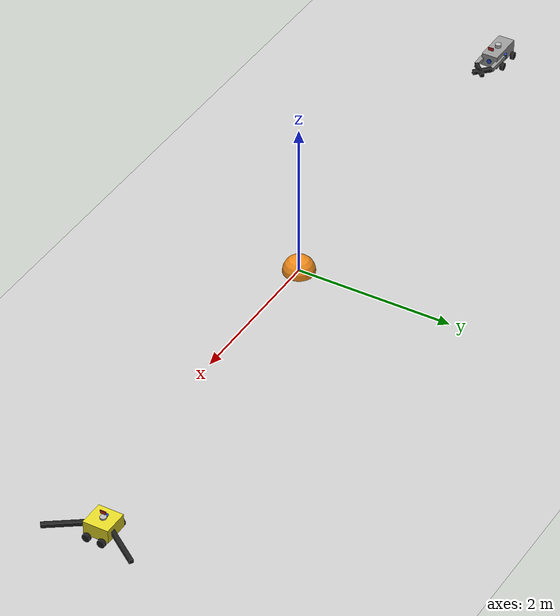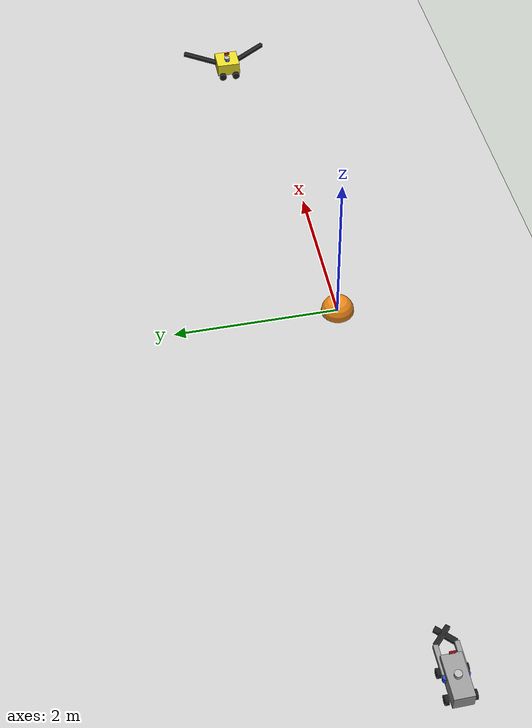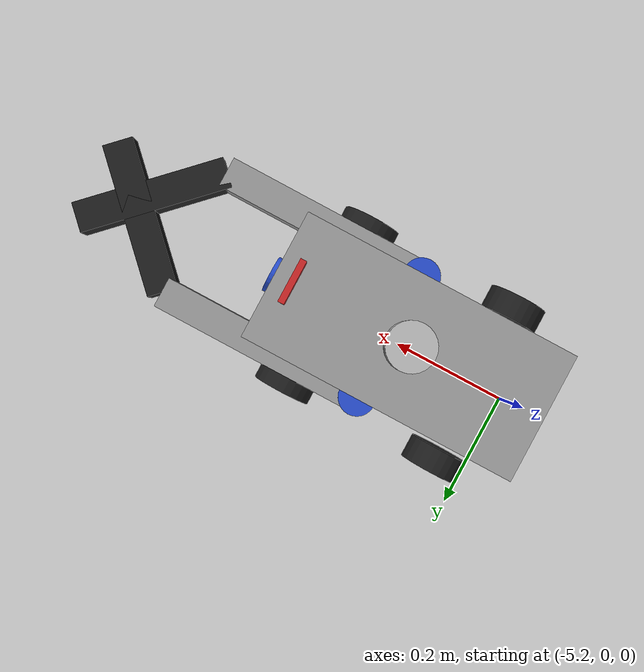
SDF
<sdf version="1.5">
 <world name="default">
  <include><uri>model://sun</uri></include>
  <include><uri>model://ground_plane</uri></include>
  <include><uri>model://soccer_ball</uri><name>soccer_ball</name></include>
  <model name="tankbot0">
   <pose>-5 0 0 0 0 0</pose>
   <include><uri>model://tankbot_kicker</uri></include>
   <plugin name="tankbot_control" filename="libtank_control_plugin.so"/>
  </model>
  <model name="tankbot1">
   <pose>5 0.5 0 0 0 1.5707963267948966</pose>
   <include><uri>model://tankbot_goalie</uri></include>
   <plugin name="tankbot_control" filename="libtank_control_plugin.so"/>
  </model>
 </world>
</sdf>

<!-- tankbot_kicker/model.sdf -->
<sdf version="1.5">
  <!-- http://sdformat.org/spec?elem=sensor&ver=1.5 -->
  <model name="tankbot">
    <link name="chassis">
      <pose>0 0 0.135 0 0 0</pose>

      <inertial>
        <pose>0.04650000000000001 0 0  0 0 0</pose>
        <mass>2.0</mass>
        <inertia>
          <ixx>0.012592666666666665</ixx><iyy>0.04085416666666667</iyy><izz>0.043813500000000005</izz>
          <ixy>0</ixy><ixz>0</ixz><iyz>0</iyz>
        </inertia>
      </inertial>

      <collision name="collision">
        <geometry>
          <box>
            <size>0.465 0.216 0.17</size>
          </box>
        </geometry>
      </collision>

      <visual name="visual">
        <geometry>
          <box>
            <size>0.465 0.216 0.17</size>
          </box>
        </geometry>
        <material>
          <script>
            <uri>file://media/materials/scripts/gazebo.material</uri>
            <name>Gazebo/Grey</name>
          </script>
        </material>
      </visual>
    </link>

    <link name="kicker">
      <pose>
        0.11750000000000001 0 0.135
        0 1.5707963267948966 0
      </pose>
      <inertial>
        <mass>0.5</mass>
        <inertia>
          <ixx>0.0027166666666666663</ixx><iyy>0.0027166666666666663</iyy><izz>0.000225</izz>
          <ixy>0</ixy><ixz>0</ixz><iyz>0</iyz></inertia>
      </inertial>

      <collision name='collision'>
        <geometry><cylinder><radius>0.03</radius><length>0.25</length></cylinder></geometry>
      </collision>

      <visual name="visual">
        <geometry><cylinder><radius>0.03</radius><length>0.25</length></cylinder></geometry>
        <material>
          <script>
            <uri>file://media/materials/scripts/gazebo.material</uri>
            <name>Gazebo/Blue</name>
          </script>
        </material>
      </visual>
    </link>

    <joint name="kicker_joint" type="prismatic">
      <parent>chassis</parent>
      <child>kicker</child>
      <axis>
        <xyz>0 0 1</xyz>
        <limit>
          <lower>0</lower>
          <upper> 0.24</upper>
          <effort>50</effort>
        </limit>
        <dynamics>
          <friction>1</friction>
          <damping>1</damping>
        </dynamics>
      </axis>
    </joint>

    <link name="right_aftarm">
      <pose>
        0.20450000000000002
        -0.108
        0.135 0 0 0
      </pose>

      <inertial>
        <mass>0.1</mass>
        <inertia>
          <ixx>4.166666666666667e-05</ixx><iyy>0.0010416666666666664</iyy><izz>0.0010416666666666664</izz>
          <ixy>0</ixy><ixz>0</ixz><iyz>0</iyz>
        </inertia>
      </inertial>

      <visual name='visual'>
        <geometry><box><size>0.35 0.05 0.05</size></box></geometry>
        <material>
          <script><uri>file://media/materials/scripts/gazebo.material</uri><name>Gazebo/Grey</name></script>
        </material>
      </visual>

      <collision name='collision'>
        <geometry><box><size>0.35 0.05 0.05</size></box></geometry>
      </collision>
    </link>

    <link name="right_forearm">
      <pose>
        0.46611165235168156
        -0.019611652351681566
        0.135 0 0 0.7853981633974483
      </pose>

      <inertial>
        <mass>0.1</mass>
        <inertia>
          <ixx>4.166666666666667e-05</ixx><iyy>0.0005416666666666666</iyy><izz>0.0005416666666666666</izz>
          <ixy>0</ixy><ixz>0</ixz><iyz>0</iyz>
        </inertia>
      </inertial>

      <visual name='visual'>
        <geometry><box><size>0.25 0.05 0.05</size></box></geometry>
        <material>
          <script><uri>file://media/materials/scripts/gazebo.material</uri><name>Gazebo/Black</name></script>
        </material>
      </visual>

      <collision name='collision'>
        <geometry><box><size>0.25 0.05 0.05</size></box></geometry>
      </collision>
    </link>

    <link name="right_shoulder">
      <pose>
        0.029500000000000026
        -0.108
        0.135 0 0 0.7853981633974483
      </pose>

      <inertial>
        <mass>0.1</mass>
        <inertia>
          <ixx>5.25e-05</ixx><iyy>5.25e-05</iyy><izz>4.5e-05</izz>
          <ixy>0</ixy><ixz>0</ixz><iyz>0</iyz>
        </inertia>
      </inertial>

      <visual name='visual'>
        <geometry><cylinder><radius>0.03</radius><length>0.06</length></cylinder></geometry>
        <material>
          <script><uri>file://media/materials/scripts/gazebo.material</uri><name>Gazebo/Blue</name></script>
        </material>
      </visual>

      <collision name='collision'>
        <geometry><cylinder><radius>0.03</radius><length>0.06</length></cylinder></geometry>
      </collision>
    </link>

    <joint name="right_elbow_joint" type="fixed">
      <parent>right_aftarm</parent>
      <child>right_forearm</child>
    </joint>

    <joint name="right_pre_shoulder_joint" type="fixed">
      <parent>right_shoulder</parent>
      <child>right_aftarm</child>
    </joint>

    <joint name="right_shoulder_joint" type="revolute">
      <parent>chassis</parent>
      <child>right_shoulder</child>
      <axis>
        <xyz>0 0 1</xyz>
        <dynamics>
          <damping>
            1
          </damping>
        </dynamics>
      </axis>
    </joint>

    <link name="left_aftarm">
      <pose>
        0.20450000000000002
        0.108
        0.135 0 0 0
      </pose>

      <inertial>
        <mass>0.1</mass>
        <inertia>
          <ixx>4.166666666666667e-05</ixx><iyy>0.0010416666666666664</iyy><izz>0.0010416666666666664</izz>
          <ixy>0</ixy><ixz>0</ixz><iyz>0</iyz>
        </inertia>
      </inertial>

      <visual name='visual'>
        <geometry><box><size>0.35 0.05 0.05</size></box></geometry>
        <material>
          <script><uri>file://media/materials/scripts/gazebo.material</uri><name>Gazebo/Grey</name></script>
        </material>
      </visual>

      <collision name='collision'>
        <geometry><box><size>0.35 0.05 0.05</size></box></geometry>
      </collision>
    </link>

    <link name="left_forearm">
      <pose>
        0.46611165235168156
        0.019611652351681566
        0.135 0 0 -0.7853981633974483
      </pose>

      <inertial>
        <mass>0.1</mass>
        <inertia>
          <ixx>4.166666666666667e-05</ixx><iyy>0.0005416666666666666</iyy><izz>0.0005416666666666666</izz>
          <ixy>0</ixy><ixz>0</ixz><iyz>0</iyz>
        </inertia>
      </inertial>

      <visual name='visual'>
        <geometry><box><size>0.25 0.05 0.05</size></box></geometry>
        <material>
          <script><uri>file://media/materials/scripts/gazebo.material</uri><name>Gazebo/Black</name></script>
        </material>
      </visual>

      <collision name='collision'>
        <geometry><box><size>0.25 0.05 0.05</size></box></geometry>
      </collision>
    </link>

    <link name="left_shoulder">
      <pose>
        0.029500000000000026
        0.108
        0.135 0 0 -0.7853981633974483
      </pose>

      <inertial>
        <mass>0.1</mass>
        <inertia>
          <ixx>5.25e-05</ixx><iyy>5.25e-05</iyy><izz>4.5e-05</izz>
          <ixy>0</ixy><ixz>0</ixz><iyz>0</iyz>
        </inertia>
      </inertial>

      <visual name='visual'>
        <geometry><cylinder><radius>0.03</radius><length>0.06</length></cylinder></geometry>
        <material>
          <script><uri>file://media/materials/scripts/gazebo.material</uri><name>Gazebo/Blue</name></script>
        </material>
      </visual>

      <collision name='collision'>
        <geometry><cylinder><radius>0.03</radius><length>0.06</length></cylinder></geometry>
      </collision>
    </link>

    <joint name="left_elbow_joint" type="fixed">
      <parent>left_aftarm</parent>
      <child>left_forearm</child>
    </joint>

    <joint name="left_pre_shoulder_joint" type="fixed">
      <parent>left_shoulder</parent>
      <child>left_aftarm</child>
    </joint>

    <joint name="left_shoulder_joint" type="revolute">
      <parent>chassis</parent>
      <child>left_shoulder</child>
      <axis>
        <xyz>0 0 1</xyz>
        <dynamics>
          <damping>
            1
          </damping>
        </dynamics>
      </axis>
    </joint>

    <link name="wheel_fl">
      <pose>
        0.1395 0.14200000000000002 0.05
        -1.5707963267948966 -0.08726646259971647 0
      </pose>
      <inertial>
        <mass>0.25</mass>
        <inertia>
          <ixx>0.00018958333333333338</ixx>
          <iyy>0.00018958333333333338</iyy>
          <izz>0.00031250000000000006</izz>
          <ixy>0</ixy>
          <ixz>0</ixz>
          <iyz>0</iyz>
        </inertia>
      </inertial>
      <collision name="collision">
        <geometry>
          <cylinder>
            <radius>0.05</radius>
            <length>0.04</length>
          </cylinder>
        </geometry>
      </collision>
      <visual name="visual">
        <geometry>
          <cylinder>
            <radius>0.05</radius>
            <length>0.04</length>
          </cylinder>
        </geometry>
        <material>
          <script>
            <uri>file://media/materials/scripts/gazebo.material</uri>
            <name>Gazebo/Black</name>
          </script>
        </material>
      </visual>
    </link>

    <joint name="wheel_fl_drive" type="revolute">
      <parent>chassis</parent>
      <child>wheel_fl</child>
      <axis>
        <xyz>0 0 1</xyz>
      </axis>
    </joint>

    <link name="wheel_fr">
      <pose>
        0.1395 -0.14200000000000002 0.05
        -1.5707963267948966 -0.08726646259971647 0
      </pose>
      <inertial>
        <mass>0.25</mass>
        <inertia>
          <ixx>0.00018958333333333338</ixx>
          <iyy>0.00018958333333333338</iyy>
          <izz>0.00031250000000000006</izz>
          <ixy>0</ixy>
          <ixz>0</ixz>
          <iyz>0</iyz>
        </inertia>
      </inertial>
      <collision name="collision">
        <geometry>
          <cylinder>
            <radius>0.05</radius>
            <length>0.04</length>
          </cylinder>
        </geometry>
      </collision>
      <visual name="visual">
        <geometry>
          <cylinder>
            <radius>0.05</radius>
            <length>0.04</length>
          </cylinder>
        </geometry>
        <material>
          <script>
            <uri>file://media/materials/scripts/gazebo.material</uri>
            <name>Gazebo/Black</name>
          </script>
        </material>
      </visual>
    </link>

    <joint name="wheel_fr_drive" type="revolute">
      <parent>chassis</parent>
      <child>wheel_fr</child>
      <axis>
        <xyz>0 0 1</xyz>
      </axis>
    </joint>

    <link name="wheel_rl">
      <pose>
       -0.1395 0.14200000000000002 0.05
       -1.5707963267948966 0 0
      </pose>
      <inertial>
        <mass>0.25</mass>
        <inertia>
          <ixx>0.00018958333333333338</ixx>
          <iyy>0.00018958333333333338</iyy>
          <izz>0.00031250000000000006</izz>
          <ixy>0</ixy>
          <ixz>0</ixz>
          <iyz>0</iyz>
        </inertia>
      </inertial>
      <collision name="collision">
        <geometry>
          <cylinder>
            <radius>0.05</radius>
            <length>0.04</length>
          </cylinder>
        </geometry>
      </collision>
      <visual name="visual">
        <geometry>
          <cylinder>
            <radius>0.05</radius>
            <length>0.04</length>
          </cylinder>
        </geometry>
        <material>
          <script>
            <uri>file://media/materials/scripts/gazebo.material</uri>
            <name>Gazebo/Black</name>
          </script>
        </material>
      </visual>
    </link>
    <joint name="wheel_rl_drive" type="revolute">
      <parent>chassis</parent>
      <child>wheel_rl</child>
      <axis>
        <xyz>0 0 1</xyz>
      </axis>
    </joint>

    <link name="wheel_rr">
      <pose>
       -0.1395 -0.14200000000000002 0.05
       -1.5707963267948966 0 0
      </pose>
      <inertial>
        <mass>0.25</mass>
        <inertia>
          <ixx>0.00018958333333333338</ixx>
          <iyy>0.00018958333333333338</iyy>
          <izz>0.00031250000000000006</izz>
          <ixy>0</ixy>
          <ixz>0</ixz>
          <iyz>0</iyz>
        </inertia>
      </inertial>
      <collision name="collision">
        <geometry>
          <cylinder>
            <radius>0.05</radius>
            <length>0.04</length>
          </cylinder>
        </geometry>
      </collision>
      <visual name="visual">
        <geometry>
          <cylinder>
            <radius>0.05</radius>
            <length>0.04</length>
          </cylinder>
        </geometry>
        <material>
          <script>
            <uri>file://media/materials/scripts/gazebo.material</uri>
            <name>Gazebo/Black</name>
          </script>
        </material>
      </visual>
    </link>
    <joint name="wheel_rr_drive" type="revolute">
      <parent>chassis</parent>
      <child>wheel_rr</child>
      <axis>
        <xyz>0 0 1</xyz>
      </axis>
    </joint>

    <include>
      <uri>model://ultrasonic_sensor</uri>
      <pose>
        0.0 0.0 0.24000000000000002
        0.0 0.0 0.0
      </pose>
    </include>

    <joint name="sonar_joint" type="fixed">
      <child>ultrasonic_sensor::link</child>
      <parent>chassis</parent>
    </joint>

    <include>
      <uri>model://camera_sensor</uri>
      <pose>
        0.2 0.0 0.3
        0.0 0.0 0.0
      </pose>
    </include>

    <joint name="camera_joint" type="fixed">
      <child>camera_sensor::link</child>
      <parent>chassis</parent>
    </joint>
  </model>
</sdf>

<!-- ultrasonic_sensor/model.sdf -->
<sdf version="1.6">
  <model name="ultrasonic_sensor">
    <pose>0 0 0.02 0 0 0</pose>
    <link name="link">

      <inertial>
        <mass>0.1</mass>
      </inertial>

      <visual name="visual">
        <geometry>
          <cylinder>
            <radius>0.04</radius>
            <length>0.04</length>
          </cylinder>
        </geometry>
      </visual>

      <collision name="collision-base">
        <pose>0 0 -0.0145 0 0 0</pose>
        <geometry>
          <box>
            <size>0.05 0.05 0.041</size>
          </box>
        </geometry>
      </collision>

      <collision name="collision-top">
        <pose>0 0 0.0205 0 0 0</pose>
        <geometry>
          <cylinder>
            <radius>0.021</radius>
            <length>0.029</length>
          </cylinder>
        </geometry>
      </collision>

      <sensor name="sonar" type="sonar">
        <pose>0.04 0 0 0 1.5 3.14</pose>
        <sonar>
          <min>0</min>
          <max>3</max>
          <radius>0.3</radius>
        </sonar>
        <plugin name="sonar" filename="libSonarPlugin.so" />
        <always_on>1</always_on>
        <update_rate>30</update_rate>
        <visualize>true</visualize>
      </sensor>

    </link>
  </model>
</sdf>

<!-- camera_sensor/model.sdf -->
<sdf version="1.6">
  <model name="camera_sensor">
    <pose>0 0 0.02 0 0 0</pose>
    <link name="link">
      <inertial>
        <mass>0.1</mass>
      </inertial>

      <visual name="visual">
        <geometry>
          <box>
            <size>0.01 0.07 0.04</size>
          </box>
        </geometry>
        <material>
          <script>
            <uri>file://media/materials/scripts/gazebo.material</uri>
            <name>Gazebo/Red</name>
          </script>
        </material>
      </visual>

      <collision name="collision">
        <pose>0 0 -0.0145 0 0 0</pose>
        <geometry>
          <box>
            <size>0.01 0.07 0.04</size>
          </box>
        </geometry>
      </collision>

      <sensor name='camera' type='camera'>
        <camera>
          <horizontal_fov>1.3962634</horizontal_fov>
          <image>
            <width>800</width>
            <height>800</height>
          </image>
          <clip>
            <near>0.02</near>
            <far>300</far>
          </clip>
        </camera>
        <always_on>1</always_on>
        <update_rate>10</update_rate>
        <visualize>1</visualize>

        <plugin name="camera_controller" filename="libCameraPlugin.so"></plugin>
      </sensor>

    </link>
  </model>
</sdf>

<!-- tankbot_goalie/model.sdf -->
<sdf version="1.5">
  <!-- http://sdformat.org/spec?elem=sensor&ver=1.5 -->
  <model name="tankbot">
    <link name="chassis">
      <pose>0 0 0.135 0 0 0</pose>

      <inertial>
        <pose>0.0316 0 0  0 0 0</pose>
        <mass>2.0</mass>
        <inertia>
          <ixx>0.021459333333333334</ixx><iyy>0.021459333333333334</iyy><izz>0.03328533333333333</izz>
          <ixy>0</ixy><ixz>0</ixz><iyz>0</iyz>
        </inertia>
      </inertial>

      <collision name="collision">
        <geometry>
          <box>
            <size>0.316 0.316 0.17</size>
          </box>
        </geometry>
      </collision>

      <visual name="visual">
        <geometry>
          <box>
            <size>0.316 0.316 0.17</size>
          </box>
        </geometry>
        <material>
          <script>
            <uri>file://media/materials/scripts/gazebo.material</uri>
            <name>Gazebo/Yellow</name>
          </script>
        </material>
      </visual>
    </link>

    <link name="shoulder">
      <pose>
        0
        0.05
        0.135
        0 0 0
      </pose>

      <inertial>
        <mass>0.1</mass>
        <inertia>
          <ixx>0.0002925</ixx><iyy>0.0002925</iyy><izz>4.5e-05</izz>
          <ixy>0</ixy><ixz>0</ixz><iyz>0</iyz>
        </inertia>
      </inertial>

      <visual name='visual'>
        <geometry><cylinder><radius>0.03</radius><length>0.18</length></cylinder></geometry>
        <material>
          <script><uri>file://media/materials/scripts/gazebo.material</uri><name>Gazebo/Blue</name></script>
        </material>
      </visual>

      <collision name='collision'>
        <geometry><cylinder><radius>0.03</radius><length>0.18</length></cylinder></geometry>
      </collision>
    </link>

    <link name="right_blocker">
      <pose>
        -0.28670321550114714
        -0.15075175272286612
        0.135
        0 0 0.6108652381980153
      </pose>

      <inertial>
        <mass>0.1</mass>
        <inertia>
          <ixx>4.166666666666667e-05</ixx><iyy>0.004104166666666666</iyy><izz>0.004104166666666666</izz>
          <ixy>0</ixy><ixz>0</ixz><iyz>0</iyz>
        </inertia>
      </inertial>

      <visual name='visual'>
        <geometry><box><size>0.7 0.05 0.05</size></box></geometry>
        <material>
          <script><uri>file://media/materials/scripts/gazebo.material</uri><name>Gazebo/Black</name></script>
        </material>
      </visual>

      <collision name='collision'>
        <geometry><box><size>0.7 0.05 0.05</size></box></geometry>
      </collision>
    </link>

    <joint name="right_blocker_joint" type="fixed">
      <parent>shoulder</parent>
      <child>right_blocker</child>
    </joint>

    <link name="left_blocker">
      <pose>
        0.28670321550114714
        -0.15075175272286612
        0.135
        0 0 2.5307274153917776
      </pose>

      <inertial>
        <mass>0.1</mass>
        <inertia>
          <ixx>4.166666666666667e-05</ixx><iyy>0.004104166666666666</iyy><izz>0.004104166666666666</izz>
          <ixy>0</ixy><ixz>0</ixz><iyz>0</iyz>
        </inertia>
      </inertial>

      <visual name='visual'>
        <geometry><box><size>0.7 0.05 0.05</size></box></geometry>
        <material>
          <script><uri>file://media/materials/scripts/gazebo.material</uri><name>Gazebo/Black</name></script>
        </material>
      </visual>

      <collision name='collision'>
        <geometry><box><size>0.7 0.05 0.05</size></box></geometry>
      </collision>
    </link>

    <joint name="left_blocker_joint" type="fixed">
      <parent>shoulder</parent>
      <child>left_blocker</child>
    </joint>

    <joint name="left_shoulder_joint" type="revolute">
      <parent>chassis</parent>
      <child>shoulder</child>
      <axis>
        <xyz>0 0 1</xyz>
      </axis>
    </joint>

    <link name="wheel_fl">
      <pose>
        0.0948 0.192 0.05
        -1.5707963267948966 -0.08726646259971647 0
      </pose>
      <inertial>
        <mass>0.25</mass>
        <inertia>
          <ixx>0.00018958333333333338</ixx>
          <iyy>0.00018958333333333338</iyy>
          <izz>0.00031250000000000006</izz>
          <ixy>0</ixy>
          <ixz>0</ixz>
          <iyz>0</iyz>
        </inertia>
      </inertial>
      <collision name="collision">
        <geometry>
          <cylinder>
            <radius>0.05</radius>
            <length>0.04</length>
          </cylinder>
        </geometry>
      </collision>
      <visual name="visual">
        <geometry>
          <cylinder>
            <radius>0.05</radius>
            <length>0.04</length>
          </cylinder>
        </geometry>
        <material>
          <script>
            <uri>file://media/materials/scripts/gazebo.material</uri>
            <name>Gazebo/Black</name>
          </script>
        </material>
      </visual>
    </link>

    <joint name="wheel_fl_drive" type="revolute">
      <parent>chassis</parent>
      <child>wheel_fl</child>
      <axis>
        <xyz>0 0 1</xyz>
      </axis>
    </joint>

    <link name="wheel_fr">
      <pose>
        0.0948 -0.192 0.05
        -1.5707963267948966 -0.08726646259971647 0
      </pose>
      <inertial>
        <mass>0.25</mass>
        <inertia>
          <ixx>0.00018958333333333338</ixx>
          <iyy>0.00018958333333333338</iyy>
          <izz>0.00031250000000000006</izz>
          <ixy>0</ixy>
          <ixz>0</ixz>
          <iyz>0</iyz>
        </inertia>
      </inertial>
      <collision name="collision">
        <geometry>
          <cylinder>
            <radius>0.05</radius>
            <length>0.04</length>
          </cylinder>
        </geometry>
      </collision>
      <visual name="visual">
        <geometry>
          <cylinder>
            <radius>0.05</radius>
            <length>0.04</length>
          </cylinder>
        </geometry>
        <material>
          <script>
            <uri>file://media/materials/scripts/gazebo.material</uri>
            <name>Gazebo/Black</name>
          </script>
        </material>
      </visual>
    </link>

    <joint name="wheel_fr_drive" type="revolute">
      <parent>chassis</parent>
      <child>wheel_fr</child>
      <axis>
        <xyz>0 0 1</xyz>
      </axis>
    </joint>

    <link name="wheel_rl">
      <pose>
       -0.0948 0.192 0.05
       -1.5707963267948966 0 0
      </pose>
      <inertial>
        <mass>0.25</mass>
        <inertia>
          <ixx>0.00018958333333333338</ixx>
          <iyy>0.00018958333333333338</iyy>
          <izz>0.00031250000000000006</izz>
          <ixy>0</ixy>
          <ixz>0</ixz>
          <iyz>0</iyz>
        </inertia>
      </inertial>
      <collision name="collision">
        <geometry>
          <cylinder>
            <radius>0.05</radius>
            <length>0.04</length>
          </cylinder>
        </geometry>
      </collision>
      <visual name="visual">
        <geometry>
          <cylinder>
            <radius>0.05</radius>
            <length>0.04</length>
          </cylinder>
        </geometry>
        <material>
          <script>
            <uri>file://media/materials/scripts/gazebo.material</uri>
            <name>Gazebo/Black</name>
          </script>
        </material>
      </visual>
    </link>
    <joint name="wheel_rl_drive" type="revolute">
      <parent>chassis</parent>
      <child>wheel_rl</child>
      <axis>
        <xyz>0 0 1</xyz>
      </axis>
    </joint>

    <link name="wheel_rr">
      <pose>
       -0.0948 -0.192 0.05
       -1.5707963267948966 0 0
      </pose>
      <inertial>
        <mass>0.25</mass>
        <inertia>
          <ixx>0.00018958333333333338</ixx>
          <iyy>0.00018958333333333338</iyy>
          <izz>0.00031250000000000006</izz>
          <ixy>0</ixy>
          <ixz>0</ixz>
          <iyz>0</iyz>
        </inertia>
      </inertial>
      <collision name="collision">
        <geometry>
          <cylinder>
            <radius>0.05</radius>
            <length>0.04</length>
          </cylinder>
        </geometry>
      </collision>
      <visual name="visual">
        <geometry>
          <cylinder>
            <radius>0.05</radius>
            <length>0.04</length>
          </cylinder>
        </geometry>
        <material>
          <script>
            <uri>file://media/materials/scripts/gazebo.material</uri>
            <name>Gazebo/Black</name>
          </script>
        </material>
      </visual>
    </link>
    <joint name="wheel_rr_drive" type="revolute">
      <parent>chassis</parent>
      <child>wheel_rr</child>
      <axis>
        <xyz>0 0 1</xyz>
      </axis>
    </joint>

    <include>
      <uri>model://ultrasonic_sensor</uri>
      <pose>
        0.0 0.0 0.22000000000000003
        0.0 0.0 1.5707963267948966
      </pose>
    </include>

    <joint name="sonar_joint" type="fixed">
      <child>ultrasonic_sensor::link</child>
      <parent>chassis</parent>
    </joint>

    <include>
      <uri>model://camera_sensor</uri>
      <pose>
        0.0 0.0 0.3
        0.0 0.0 1.5707963267948966
      </pose>
    </include>

    <joint name="camera_joint" type="fixed">
      <child>camera_sensor::link</child>
      <parent>chassis</parent>
    </joint>
  </model>
</sdf>

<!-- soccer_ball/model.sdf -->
<sdf version="1.5">
  <!-- http://sdformat.org/spec?elem=sensor&ver=1.5 -->
  <model name='soccer_ball'>
    <link name='link'>
      <inertial>
        <mass>0.1</mass>
        <inertia>
          <ixx>0.0016000000000000005</ixx><iyy>0.0016000000000000005</iyy><izz>0.0016000000000000005</izz>
          <ixy>0</ixy><ixz>0</ixz><iyz>0</iyz>
        </inertia>
      </inertial>
      <collision name='collision'>
        <geometry><sphere><radius>0.2</radius></sphere></geometry>
        <surface>
          <friction>
            <ode> <mu>100</mu> <mu2>100</mu2> </ode>
          </friction>
          <bounce>
            <restitution_coefficient>0.85</restitution_coefficient>
            <threshold>0</threshold>

          </bounce>
        </surface>
      </collision>
      <visual name='visual'>
        <geometry><sphere><radius>0.2</radius></sphere></geometry>
        <material>
          <script>
            <uri>file://media/materials/scripts/gazebo.material</uri>
            <name>Gazebo/Orange</name>
          </script>
        </material>
      </visual>
      <velocity_decay>
        <linear>0.0004</linear>
        <angular>0.0004</angular>
      </velocity_decay>
      <self_collide>0</self_collide>
      <kinematic>0</kinematic>
      <gravity>1</gravity>
    </link>
  </model>
</sdf>
